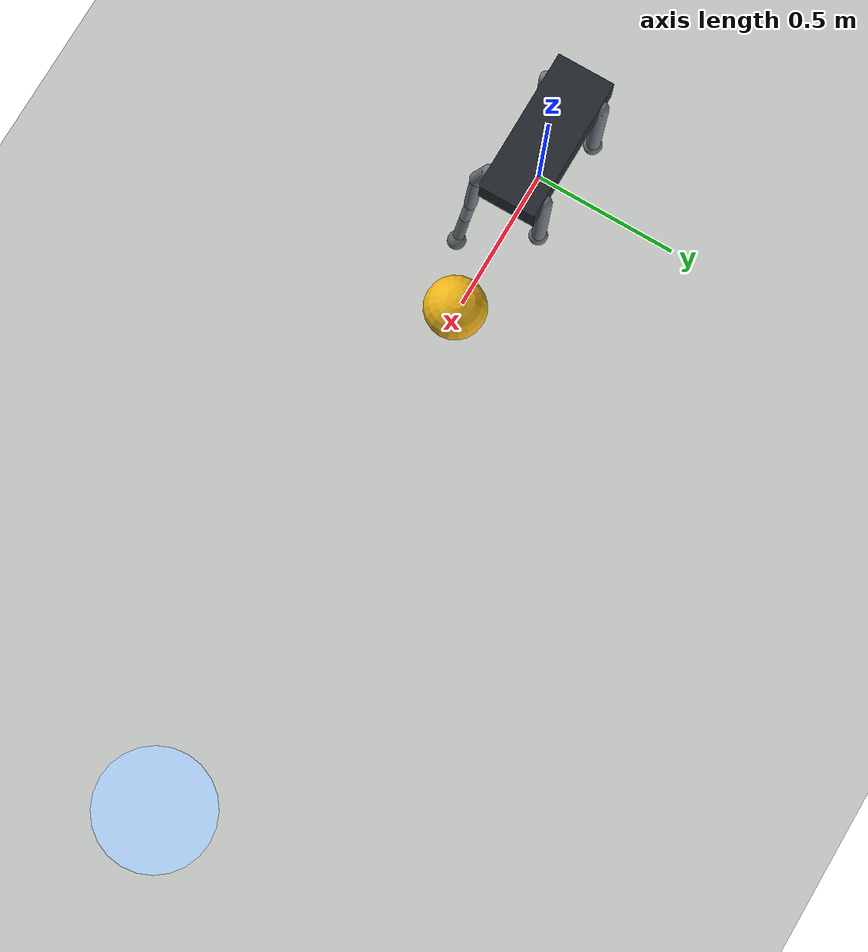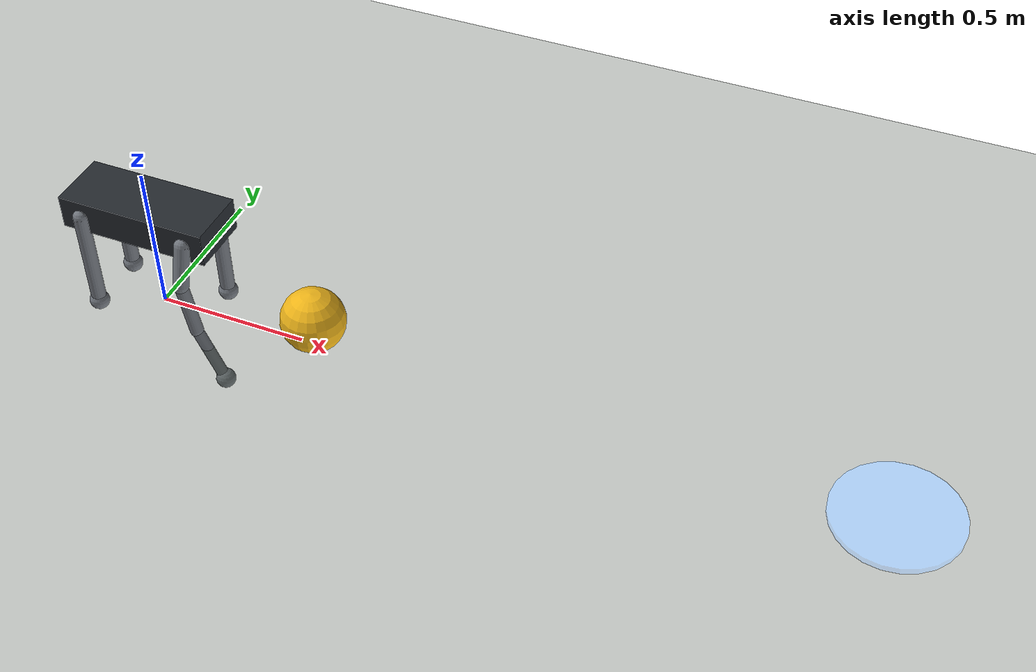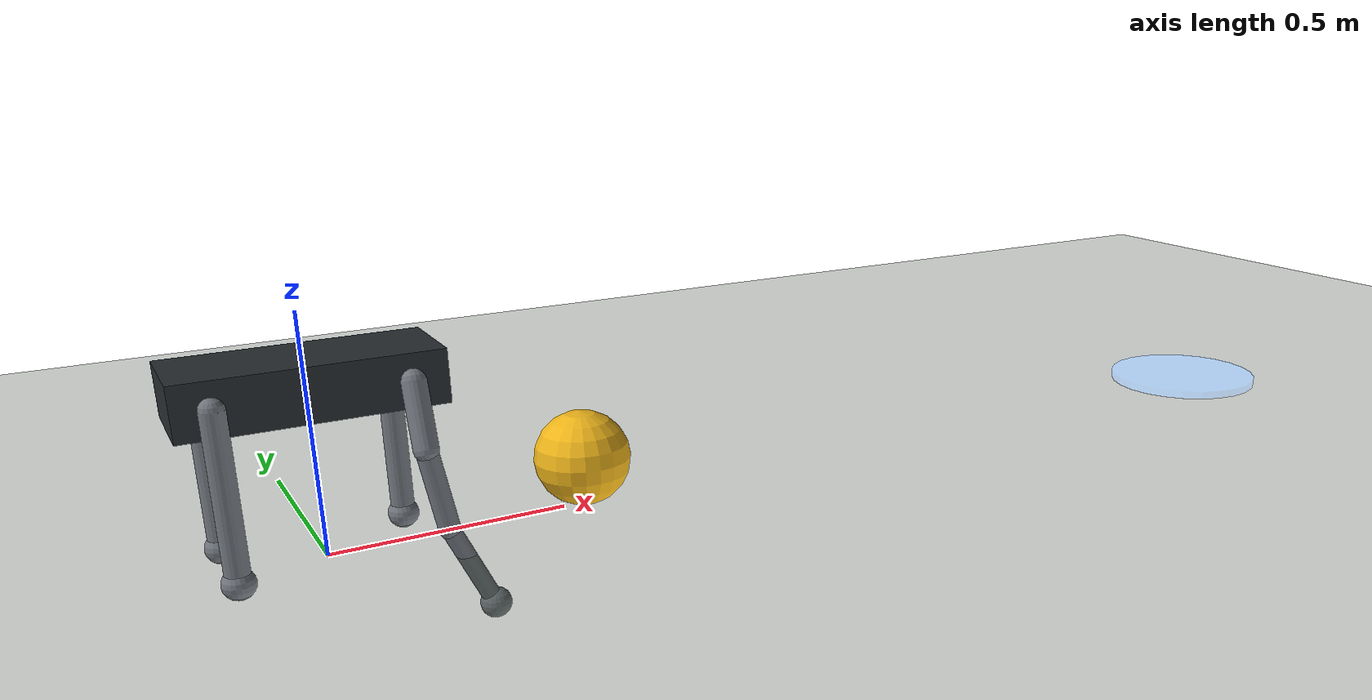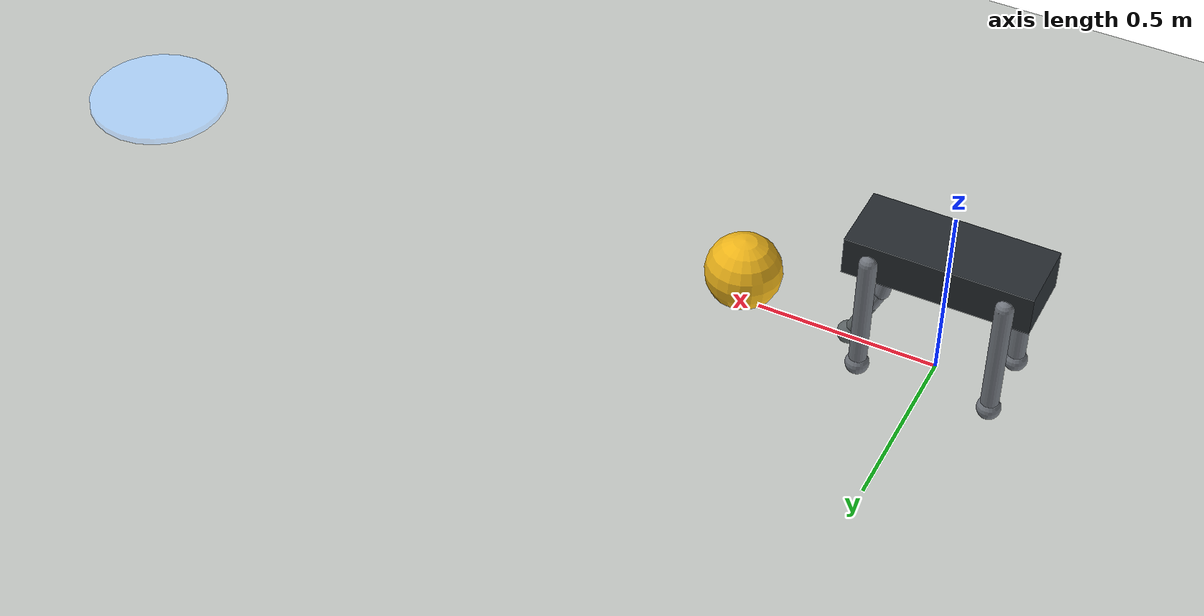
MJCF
<mujoco model="quadruped_soccer_scene">
  <compiler angle="radian"/>
  <option timestep="0.002" gravity="0 0 -9.81"/>
  <default>
    <joint damping="0.5" armature="0.01"/>
    <geom friction="0.9 0.02 0.001" solref="0.01 1"/>
    <motor ctrllimited="true" ctrlrange="-1 1"/>
  </default>
  <asset>
    <texture name="grid" type="2d" builtin="checker" rgb1="0.25 0.31 0.25" rgb2="0.18 0.22 0.18" width="256" height="256"/>
    <material name="ground" texture="grid" texrepeat="8 8"/>
    <material name="body" rgba="0.15 0.17 0.19 1"/>
    <material name="leg" rgba="0.45 0.47 0.50 1"/>
    <material name="ballmat" rgba="0.95 0.72 0.10 1"/>
    <material name="goalmat" rgba="0.1 0.5 0.95 0.35"/>
  </asset>
  <worldbody>
    <light pos="0 0 4"/>
    <geom name="floor" type="plane" size="5 5 0.05" material="ground"/>
    <geom name="goal" type="cylinder" pos="2.4 0 0.01" size="0.2 0.01" material="goalmat" contype="0" conaffinity="0"/>
    <body name="base" pos="0 0 0.36">
      <freejoint/>
      <geom type="box" size="0.25 0.10 0.055" material="body" mass="5"/>
      <body name="fr_hip" pos="0.18 -0.10 0">
        <joint name="fr_hip" axis="1 0 0" range="-0.8 0.8"/>
        <geom type="capsule" fromto="0 0 0 0 -0.04 -0.13" size="0.025" material="leg"/>
        <body name="fr_thigh" pos="0 -0.04 -0.13">
          <joint name="fr_thigh" axis="0 1 0" range="-1.8 1.8"/>
          <geom type="capsule" fromto="0 0 0 0.03 0 -0.17" size="0.022" material="leg"/>
          <body name="fr_calf" pos="0.03 0 -0.17">
            <joint name="fr_calf" axis="0 1 0" range="-2.7 -0.2"/>
            <geom type="capsule" fromto="0 0 0 0.08 0 -0.18" size="0.019" material="leg"/>
            <geom name="fr_toe" type="sphere" pos="0.08 0 -0.18" size="0.032" material="leg"/>
          </body>
        </body>
      </body>
      <body name="fl_leg" pos="0.18 0.10 0">
        <geom type="capsule" fromto="0 0 0 0 0 -0.34" size="0.024" material="leg"/>
        <geom type="sphere" pos="0 0 -0.34" size="0.032" material="leg"/>
      </body>
      <body name="rr_leg" pos="-0.18 -0.10 0">
        <geom type="capsule" fromto="0 0 0 0 0 -0.34" size="0.024" material="leg"/>
        <geom type="sphere" pos="0 0 -0.34" size="0.032" material="leg"/>
      </body>
      <body name="rl_leg" pos="-0.18 0.10 0">
        <geom type="capsule" fromto="0 0 0 0 0 -0.34" size="0.024" material="leg"/>
        <geom type="sphere" pos="0 0 -0.34" size="0.032" material="leg"/>
      </body>
    </body>
    <body name="ball" pos="0.55 0 0.105">
      <freejoint/>
      <geom name="ball_geom" type="sphere" size="0.105" mass="0.43" material="ballmat" friction="0.85 0.04 0.002"/>
    </body>
  </worldbody>
  <actuator>
    <motor name="fr_hip_motor" joint="fr_hip" gear="25"/>
    <motor name="fr_thigh_motor" joint="fr_thigh" gear="25"/>
    <motor name="fr_calf_motor" joint="fr_calf" gear="25"/>
  </actuator>
</mujoco>
